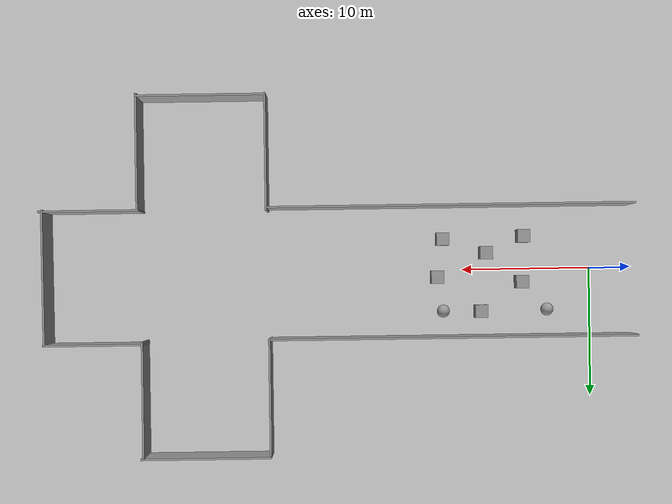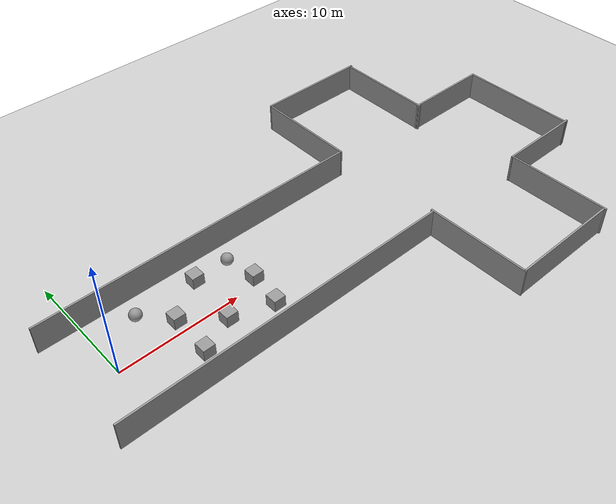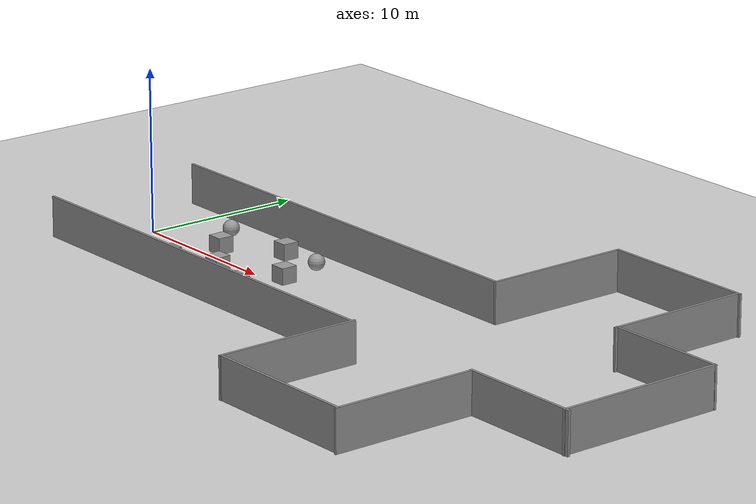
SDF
<sdf version="1.7">
 <world name="default">
  <light name="sun" type="directional">
   <pose>0 0 10 0 -0 0</pose>
   <diffuse>0.8 0.8 0.8 1</diffuse>
   <specular>0.2 0.2 0.2 1</specular>
   <attenuation>
    <range>1000</range>
    <constant>0.9</constant>
    <linear>0.01</linear>
    <quadratic>0.001</quadratic>
   </attenuation>
   <direction>-0.5 0.1 -0.9</direction>
   <spot><inner_angle>0</inner_angle><outer_angle>0</outer_angle><falloff>0</falloff></spot>
  </light>
  <model name="ground_plane">
   <static>1</static>
   <link name="link">
    <collision name="collision">
     <geometry><plane><normal>0 0 1</normal><size>100 100</size></plane></geometry>
     <surface><friction><ode><mu>100</mu><mu2>50</mu2></ode></friction></surface>
    </collision>
    <visual name="visual">
     <cast_shadows>0</cast_shadows>
     <geometry><plane><normal>0 0 1</normal><size>100 100</size></plane></geometry>
     <material>
      <script><uri>file://media/materials/scripts/gazebo.material</uri><name>Gazebo/Grey</name></script>
     </material>
    </visual>
   </link>
  </model>
  <gravity>0 0 -9.8</gravity>
  <magnetic_field>6e-06 2.3e-05 -4.2e-05</magnetic_field>
  <atmosphere type="adiabatic"/>
  <physics type="ode">
   <max_step_size>0.001</max_step_size>
   <real_time_factor>1</real_time_factor>
   <real_time_update_rate>1000</real_time_update_rate>
  </physics>
  <scene><ambient>0.4 0.4 0.4 1</ambient><background>0.7 0.7 0.7 1</background><shadows>1</shadows></scene>
  <spherical_coordinates>
   <surface_model>EARTH_WGS84</surface_model>
   <latitude_deg>0</latitude_deg>
   <longitude_deg>0</longitude_deg>
   <elevation>0</elevation>
   <heading_deg>0</heading_deg>
  </spherical_coordinates>
  <model name="dynamic_T_letter">
   <link name="Wall_10">
    <pose>10.6566 11.3839 0 0 -0 0</pose>
    <visual name="Wall_10_Visual">
     <pose>0 0 1.25 0 -0 0</pose>
     <geometry><box><size>10 0.15 2.5</size></box></geometry>
     <material>
      <script><uri>file://media/materials/scripts/gazebo.material</uri><name>Gazebo/Grey</name></script>
      <ambient>1 1 1 1</ambient>
      <shader type="pixel"/>
     </material>
     <meta><layer>0</layer></meta>
    </visual>
    <collision name="Wall_10_Collision">
     <pose>0 0 1.25 0 -0 0</pose>
     <geometry><box><size>10 0.15 2.5</size></box></geometry>
     <surface>
      <friction>
       <ode><mu>1</mu><mu2>1</mu2><fdir1>0 0 0</fdir1><slip1>0</slip1><slip2>0</slip2></ode>
       <torsional>
        <coefficient>1</coefficient>
        <patch_radius>0</patch_radius>
        <surface_radius>0</surface_radius>
        <use_patch_radius>1</use_patch_radius>
        <ode><slip>0</slip></ode>
       </torsional>
      </friction>
      <bounce><restitution_coefficient>0</restitution_coefficient><threshold>1e+06</threshold></bounce>
      <contact>
       <collide_without_contact>0</collide_without_contact>
       <collide_without_contact_bitmask>1</collide_without_contact_bitmask>
       <collide_bitmask>1</collide_bitmask>
       <ode>
        <soft_cfm>0</soft_cfm>
        <soft_erp>0.2</soft_erp>
        <kp>1e+13</kp>
        <kd>1</kd>
        <max_vel>0.01</max_vel>
        <min_depth>0</min_depth>
       </ode>
       <bullet>
        <split_impulse>1</split_impulse>
        <split_impulse_penetration_threshold>-0.01</split_impulse_penetration_threshold>
        <soft_cfm>0</soft_cfm>
        <soft_erp>0.2</soft_erp>
        <kp>1e+13</kp>
        <kd>1</kd>
       </bullet>
      </contact>
     </surface>
    </collision>
   </link>
   <link name="Wall_10_clone">
    <pose>10.7797 -16.4692 0 0 -0 0</pose>
    <visual name="Wall_10_Visual">
     <pose>0 0 1.25 0 -0 0</pose>
     <geometry><box><size>10 0.15 2.5</size></box></geometry>
     <material>
      <script><uri>file://media/materials/scripts/gazebo.material</uri><name>Gazebo/Grey</name></script>
      <ambient>1 1 1 1</ambient>
      <shader type="pixel"/>
     </material>
     <meta><layer>0</layer></meta>
    </visual>
    <collision name="Wall_10_Collision">
     <pose>0 0 1.25 0 -0 0</pose>
     <geometry><box><size>10 0.15 2.5</size></box></geometry>
     <surface>
      <friction>
       <ode><mu>1</mu><mu2>1</mu2><fdir1>0 0 0</fdir1><slip1>0</slip1><slip2>0</slip2></ode>
       <torsional>
        <coefficient>1</coefficient>
        <patch_radius>0</patch_radius>
        <surface_radius>0</surface_radius>
        <use_patch_radius>1</use_patch_radius>
        <ode><slip>0</slip></ode>
       </torsional>
      </friction>
      <bounce><restitution_coefficient>0</restitution_coefficient><threshold>1e+06</threshold></bounce>
      <contact>
       <collide_without_contact>0</collide_without_contact>
       <collide_without_contact_bitmask>1</collide_without_contact_bitmask>
       <collide_bitmask>1</collide_bitmask>
       <ode>
        <soft_cfm>0</soft_cfm>
        <soft_erp>0.2</soft_erp>
        <kp>1e+13</kp>
        <kd>1</kd>
        <max_vel>0.01</max_vel>
        <min_depth>0</min_depth>
       </ode>
       <bullet>
        <split_impulse>1</split_impulse>
        <split_impulse_penetration_threshold>-0.01</split_impulse_penetration_threshold>
        <soft_cfm>0</soft_cfm>
        <soft_erp>0.2</soft_erp>
        <kp>1e+13</kp>
        <kd>1</kd>
       </bullet>
      </contact>
     </surface>
    </collision>
   </link>
   <link name="Wall_11">
    <pose>15.4566 6.8718 0 0 -0 1.5708</pose>
    <inertial>
     <mass>5.7375</mass>
     <inertia><ixx>2.99904</ixx><ixy>0</ixy><ixz>0</ixz><iyy>41.7164</iyy><iyz>0</iyz><izz>38.7389</izz></inertia>
    </inertial>
    <visual name="Wall_11_Visual">
     <pose>0 0 1.25 0 -0 0</pose>
     <geometry><box><size>9 0.15 2.5</size></box></geometry>
     <material>
      <script><uri>file://media/materials/scripts/gazebo.material</uri><name>Gazebo/Grey</name></script>
      <ambient>1 1 1 1</ambient>
      <shader type="pixel"><normal_map>__default__</normal_map></shader>
     </material>
     <meta><layer>0</layer></meta>
    </visual>
    <collision name="Wall_11_Collision">
     <pose>0 0 1.25 0 -0 0</pose>
     <geometry><box><size>9 0.15 2.5</size></box></geometry>
     <surface>
      <friction>
       <ode><mu>1</mu><mu2>1</mu2><fdir1>0 0 0</fdir1><slip1>0</slip1><slip2>0</slip2></ode>
       <torsional>
        <coefficient>1</coefficient>
        <patch_radius>0</patch_radius>
        <surface_radius>0</surface_radius>
        <use_patch_radius>1</use_patch_radius>
        <ode><slip>0</slip></ode>
       </torsional>
      </friction>
      <bounce><restitution_coefficient>0</restitution_coefficient><threshold>1e+06</threshold></bounce>
      <contact>
       <collide_without_contact>0</collide_without_contact>
       <collide_without_contact_bitmask>1</collide_without_contact_bitmask>
       <collide_bitmask>1</collide_bitmask>
       <ode>
        <soft_cfm>0</soft_cfm>
        <soft_erp>0.2</soft_erp>
        <kp>1e+13</kp>
        <kd>1</kd>
        <max_vel>0.01</max_vel>
        <min_depth>0</min_depth>
       </ode>
       <bullet>
        <split_impulse>1</split_impulse>
        <split_impulse_penetration_threshold>-0.01</split_impulse_penetration_threshold>
        <soft_cfm>0</soft_cfm>
        <soft_erp>0.2</soft_erp>
        <kp>1e+13</kp>
        <kd>1</kd>
       </bullet>
      </contact>
     </surface>
    </collision>
   </link>
   <link name="Wall_12">
    <pose>19.1981 2.60037 0 0 -0 0</pose>
    <inertial>
     <inertia><ixx>1.96598</ixx><ixy>0</ixy><ixz>0</ixz><iyy>20.6154</iyy><iyz>0</iyz><izz>18.6635</izz></inertia>
     <mass>3.76114</mass>
    </inertial>
    <visual name="Wall_12_Visual">
     <pose>0 0 1.25 0 -0 0</pose>
     <geometry><box><size>7.71517 0.15 2.5</size></box></geometry>
     <material>
      <script><uri>file://media/materials/scripts/gazebo.material</uri><name>Gazebo/Grey</name></script>
      <ambient>1 1 1 1</ambient>
      <shader type="pixel"><normal_map>__default__</normal_map></shader>
     </material>
     <meta><layer>0</layer></meta>
    </visual>
    <collision name="Wall_12_Collision">
     <pose>0 0 1.25 0 -0 0</pose>
     <geometry><box><size>7.71517 0.15 2.5</size></box></geometry>
     <surface>
      <friction>
       <ode><mu>1</mu><mu2>1</mu2><fdir1>0 0 0</fdir1><slip1>0</slip1><slip2>0</slip2></ode>
       <torsional>
        <coefficient>1</coefficient>
        <patch_radius>0</patch_radius>
        <surface_radius>0</surface_radius>
        <use_patch_radius>1</use_patch_radius>
        <ode><slip>0</slip></ode>
       </torsional>
      </friction>
      <bounce><restitution_coefficient>0</restitution_coefficient><threshold>1e+06</threshold></bounce>
      <contact>
       <collide_without_contact>0</collide_without_contact>
       <collide_without_contact_bitmask>1</collide_without_contact_bitmask>
       <collide_bitmask>1</collide_bitmask>
       <ode>
        <soft_cfm>0</soft_cfm>
        <soft_erp>0.2</soft_erp>
        <kp>1e+13</kp>
        <kd>1</kd>
        <max_vel>0.01</max_vel>
        <min_depth>0</min_depth>
       </ode>
       <bullet>
        <split_impulse>1</split_impulse>
        <split_impulse_penetration_threshold>-0.01</split_impulse_penetration_threshold>
        <soft_cfm>0</soft_cfm>
        <soft_erp>0.2</soft_erp>
        <kp>1e+13</kp>
        <kd>1</kd>
       </bullet>
      </contact>
     </surface>
    </collision>
   </link>
   <link name="Wall_12_clone">
    <pose>22.9872 -2.59875 0 0 0 -1.56478</pose>
    <inertial>
     <inertia><ixx>2.05113</ixx><ixy>0</ixy><ixz>0</ixz><iyy>37.8499</iyy><iyz>0</iyz><izz>35.8135</izz></inertia>
     <mass>3.92404</mass>
    </inertial>
    <visual name="Wall_12_Visual">
     <pose>0 0 1.25 0 -0 0</pose>
     <geometry><box><size>10.4641 0.15 2.5</size></box></geometry>
     <material>
      <script><uri>file://media/materials/scripts/gazebo.material</uri><name>Gazebo/Grey</name></script>
      <ambient>1 1 1 1</ambient>
      <shader type="pixel"><normal_map>__default__</normal_map></shader>
     </material>
     <meta><layer>0</layer></meta>
    </visual>
    <collision name="Wall_12_Collision">
     <pose>0 0 1.25 0 -0 0</pose>
     <geometry><box><size>10.4641 0.15 2.5</size></box></geometry>
     <surface>
      <friction>
       <ode><mu>1</mu><mu2>1</mu2><fdir1>0 0 0</fdir1><slip1>0</slip1><slip2>0</slip2></ode>
       <torsional>
        <coefficient>1</coefficient>
        <patch_radius>0</patch_radius>
        <surface_radius>0</surface_radius>
        <use_patch_radius>1</use_patch_radius>
        <ode><slip>0</slip></ode>
       </torsional>
      </friction>
      <bounce><restitution_coefficient>0</restitution_coefficient><threshold>1e+06</threshold></bounce>
      <contact>
       <collide_without_contact>0</collide_without_contact>
       <collide_without_contact_bitmask>1</collide_without_contact_bitmask>
       <collide_bitmask>1</collide_bitmask>
       <ode>
        <soft_cfm>0</soft_cfm>
        <soft_erp>0.2</soft_erp>
        <kp>1e+13</kp>
        <kd>1</kd>
        <max_vel>0.01</max_vel>
        <min_depth>0</min_depth>
       </ode>
       <bullet>
        <split_impulse>1</split_impulse>
        <split_impulse_penetration_threshold>-0.01</split_impulse_penetration_threshold>
        <soft_cfm>0</soft_cfm>
        <soft_erp>0.2</soft_erp>
        <kp>1e+13</kp>
        <kd>1</kd>
       </bullet>
      </contact>
     </surface>
    </collision>
   </link>
   <link name="Wall_12_clone_0">
    <pose>19.4607 -7.69714 0 0 -0 0</pose>
    <inertial>
     <inertia><ixx>1.96598</ixx><ixy>0</ixy><ixz>0</ixz><iyy>20.6154</iyy><iyz>0</iyz><izz>18.6635</izz></inertia>
     <mass>3.76114</mass>
    </inertial>
    <visual name="Wall_12_Visual">
     <pose>0 0 1.25 0 -0 0</pose>
     <geometry><box><size>7.71517 0.15 2.5</size></box></geometry>
     <material>
      <script><uri>file://media/materials/scripts/gazebo.material</uri><name>Gazebo/Grey</name></script>
      <ambient>1 1 1 1</ambient>
      <shader type="pixel"><normal_map>__default__</normal_map></shader>
     </material>
     <meta><layer>0</layer></meta>
    </visual>
    <collision name="Wall_12_Collision">
     <pose>0 0 1.25 0 -0 0</pose>
     <geometry><box><size>7.71517 0.15 2.5</size></box></geometry>
     <surface>
      <friction>
       <ode><mu>1</mu><mu2>1</mu2><fdir1>0 0 0</fdir1><slip1>0</slip1><slip2>0</slip2></ode>
       <torsional>
        <coefficient>1</coefficient>
        <patch_radius>0</patch_radius>
        <surface_radius>0</surface_radius>
        <use_patch_radius>1</use_patch_radius>
        <ode><slip>0</slip></ode>
       </torsional>
      </friction>
      <bounce><restitution_coefficient>0</restitution_coefficient><threshold>1e+06</threshold></bounce>
      <contact>
       <collide_without_contact>0</collide_without_contact>
       <collide_without_contact_bitmask>1</collide_without_contact_bitmask>
       <collide_bitmask>1</collide_bitmask>
       <ode>
        <soft_cfm>0</soft_cfm>
        <soft_erp>0.2</soft_erp>
        <kp>1e+13</kp>
        <kd>1</kd>
        <max_vel>0.01</max_vel>
        <min_depth>0</min_depth>
       </ode>
       <bullet>
        <split_impulse>1</split_impulse>
        <split_impulse_penetration_threshold>-0.01</split_impulse_penetration_threshold>
        <soft_cfm>0</soft_cfm>
        <soft_erp>0.2</soft_erp>
        <kp>1e+13</kp>
        <kd>1</kd>
       </bullet>
      </contact>
     </surface>
    </collision>
   </link>
   <link name="Wall_8">
    <pose>-8.44337 2.36837 0 0 -0 0</pose>
    <inertial>
     <mass>11.6531</mass>
     <inertia><ixx>6.09119</ixx><ixy>0</ixy><ixz>0</ixz><iyy>781.063</iyy><iyz>0</iyz><izz>775.015</izz></inertia>
    </inertial>
    <visual name="Wall_8_Visual">
     <pose>0 0 1.25 0 -0 0</pose>
     <geometry><box><size>28.25 0.15 2.5</size></box></geometry>
     <material>
      <script><uri>file://media/materials/scripts/gazebo.material</uri><name>Gazebo/Grey</name></script>
      <ambient>1 1 1 1</ambient>
      <shader type="pixel"><normal_map>__default__</normal_map></shader>
     </material>
     <meta><layer>0</layer></meta>
    </visual>
    <collision name="Wall_8_Collision">
     <pose>0 0 1.25 0 -0 0</pose>
     <geometry><box><size>28.25 0.15 2.5</size></box></geometry>
     <surface>
      <friction>
       <ode><mu>1</mu><mu2>1</mu2><fdir1>0 0 0</fdir1><slip1>0</slip1><slip2>0</slip2></ode>
       <torsional>
        <coefficient>1</coefficient>
        <patch_radius>0</patch_radius>
        <surface_radius>0</surface_radius>
        <use_patch_radius>1</use_patch_radius>
        <ode><slip>0</slip></ode>
       </torsional>
      </friction>
      <bounce><restitution_coefficient>0</restitution_coefficient><threshold>1e+06</threshold></bounce>
      <contact>
       <collide_without_contact>0</collide_without_contact>
       <collide_without_contact_bitmask>1</collide_without_contact_bitmask>
       <collide_bitmask>1</collide_bitmask>
       <ode>
        <soft_cfm>0</soft_cfm>
        <soft_erp>0.2</soft_erp>
        <kp>1e+13</kp>
        <kd>1</kd>
        <max_vel>0.01</max_vel>
        <min_depth>0</min_depth>
       </ode>
       <bullet>
        <split_impulse>1</split_impulse>
        <split_impulse_penetration_threshold>-0.01</split_impulse_penetration_threshold>
        <soft_cfm>0</soft_cfm>
        <soft_erp>0.2</soft_erp>
        <kp>1e+13</kp>
        <kd>1</kd>
       </bullet>
      </contact>
     </surface>
    </collision>
   </link>
   <link name="Wall_8_clone">
    <pose>-8.32696 -7.80771 0 0 -0 0</pose>
    <inertial>
     <mass>11.6531</mass>
     <inertia><ixx>6.09119</ixx><ixy>0</ixy><ixz>0</ixz><iyy>781.063</iyy><iyz>0</iyz><izz>775.015</izz></inertia>
    </inertial>
    <visual name="Wall_8_Visual">
     <pose>0 0 1.25 0 -0 0</pose>
     <geometry><box><size>28.25 0.15 2.5</size></box></geometry>
     <material>
      <script><uri>file://media/materials/scripts/gazebo.material</uri><name>Gazebo/Grey</name></script>
      <ambient>1 1 1 1</ambient>
      <shader type="pixel"><normal_map>__default__</normal_map></shader>
     </material>
     <meta><layer>0</layer></meta>
    </visual>
    <collision name="Wall_8_Collision">
     <pose>0 0 1.25 0 -0 0</pose>
     <geometry><box><size>28.25 0.15 2.5</size></box></geometry>
     <surface>
      <friction>
       <ode><mu>1</mu><mu2>1</mu2><fdir1>0 0 0</fdir1><slip1>0</slip1><slip2>0</slip2></ode>
       <torsional>
        <coefficient>1</coefficient>
        <patch_radius>0</patch_radius>
        <surface_radius>0</surface_radius>
        <use_patch_radius>1</use_patch_radius>
        <ode><slip>0</slip></ode>
       </torsional>
      </friction>
      <bounce><restitution_coefficient>0</restitution_coefficient><threshold>1e+06</threshold></bounce>
      <contact>
       <collide_without_contact>0</collide_without_contact>
       <collide_without_contact_bitmask>1</collide_without_contact_bitmask>
       <collide_bitmask>1</collide_bitmask>
       <ode>
        <soft_cfm>0</soft_cfm>
        <soft_erp>0.2</soft_erp>
        <kp>1e+13</kp>
        <kd>1</kd>
        <max_vel>0.01</max_vel>
        <min_depth>0</min_depth>
       </ode>
       <bullet>
        <split_impulse>1</split_impulse>
        <split_impulse_penetration_threshold>-0.01</split_impulse_penetration_threshold>
        <soft_cfm>0</soft_cfm>
        <soft_erp>0.2</soft_erp>
        <kp>1e+13</kp>
        <kd>1</kd>
       </bullet>
      </contact>
     </surface>
    </collision>
   </link>
   <link name="Wall_9">
    <pose>5.71087 6.78603 0 0 0 -1.5708</pose>
    <inertial>
     <mass>5.4</mass>
     <inertia><ixx>2.82262</ixx><ixy>0</ixy><ixz>0</ixz><iyy>39.2625</iyy><iyz>0</iyz><izz>36.4601</izz></inertia>
    </inertial>
    <visual name="Wall_9_Visual">
     <pose>0 0 1.25 0 -0 0</pose>
     <geometry><box><size>9 0.15 2.5</size></box></geometry>
     <material>
      <script><uri>file://media/materials/scripts/gazebo.material</uri><name>Gazebo/Grey</name></script>
      <ambient>1 1 1 1</ambient>
      <shader type="pixel"><normal_map>__default__</normal_map></shader>
     </material>
     <meta><layer>0</layer></meta>
    </visual>
    <collision name="Wall_9_Collision">
     <pose>0 0 1.25 0 -0 0</pose>
     <geometry><box><size>9 0.15 2.5</size></box></geometry>
     <surface>
      <friction>
       <ode><mu>1</mu><mu2>1</mu2><fdir1>0 0 0</fdir1><slip1>0</slip1><slip2>0</slip2></ode>
       <torsional>
        <coefficient>1</coefficient>
        <patch_radius>0</patch_radius>
        <surface_radius>0</surface_radius>
        <use_patch_radius>1</use_patch_radius>
        <ode><slip>0</slip></ode>
       </torsional>
      </friction>
      <bounce><restitution_coefficient>0</restitution_coefficient><threshold>1e+06</threshold></bounce>
      <contact>
       <collide_without_contact>0</collide_without_contact>
       <collide_without_contact_bitmask>1</collide_without_contact_bitmask>
       <collide_bitmask>1</collide_bitmask>
       <ode>
        <soft_cfm>0</soft_cfm>
        <soft_erp>0.2</soft_erp>
        <kp>1e+13</kp>
        <kd>1</kd>
        <max_vel>0.01</max_vel>
        <min_depth>0</min_depth>
       </ode>
       <bullet>
        <split_impulse>1</split_impulse>
        <split_impulse_penetration_threshold>-0.01</split_impulse_penetration_threshold>
        <soft_cfm>0</soft_cfm>
        <soft_erp>0.2</soft_erp>
        <kp>1e+13</kp>
        <kd>1</kd>
       </bullet>
      </contact>
     </surface>
    </collision>
   </link>
   <link name="Wall_9_clone">
    <pose>5.84038 -12.0761 0 0 0 -1.5708</pose>
    <inertial>
     <mass>5.4</mass>
     <inertia><ixx>2.82262</ixx><ixy>0</ixy><ixz>0</ixz><iyy>39.2625</iyy><iyz>0</iyz><izz>36.4601</izz></inertia>
    </inertial>
    <visual name="Wall_9_Visual">
     <pose>0 0 1.25 0 -0 0</pose>
     <geometry><box><size>9 0.15 2.5</size></box></geometry>
     <material>
      <script><uri>file://media/materials/scripts/gazebo.material</uri><name>Gazebo/Grey</name></script>
      <ambient>1 1 1 1</ambient>
      <shader type="pixel"><normal_map>__default__</normal_map></shader>
     </material>
     <meta><layer>0</layer></meta>
    </visual>
    <collision name="Wall_9_Collision">
     <pose>0 0 1.25 0 -0 0</pose>
     <geometry><box><size>9 0.15 2.5</size></box></geometry>
     <surface>
      <friction>
       <ode><mu>1</mu><mu2>1</mu2><fdir1>0 0 0</fdir1><slip1>0</slip1><slip2>0</slip2></ode>
       <torsional>
        <coefficient>1</coefficient>
        <patch_radius>0</patch_radius>
        <surface_radius>0</surface_radius>
        <use_patch_radius>1</use_patch_radius>
        <ode><slip>0</slip></ode>
       </torsional>
      </friction>
      <bounce><restitution_coefficient>0</restitution_coefficient><threshold>1e+06</threshold></bounce>
      <contact>
       <collide_without_contact>0</collide_without_contact>
       <collide_without_contact_bitmask>1</collide_without_contact_bitmask>
       <collide_bitmask>1</collide_bitmask>
       <ode>
        <soft_cfm>0</soft_cfm>
        <soft_erp>0.2</soft_erp>
        <kp>1e+13</kp>
        <kd>1</kd>
        <max_vel>0.01</max_vel>
        <min_depth>0</min_depth>
       </ode>
       <bullet>
        <split_impulse>1</split_impulse>
        <split_impulse_penetration_threshold>-0.01</split_impulse_penetration_threshold>
        <soft_cfm>0</soft_cfm>
        <soft_erp>0.2</soft_erp>
        <kp>1e+13</kp>
        <kd>1</kd>
       </bullet>
      </contact>
     </surface>
    </collision>
   </link>
   <link name="Wall_9_clone_0">
    <pose>15.7197 -12.1664 0 0 0 -1.5708</pose>
    <inertial>
     <mass>5.4</mass>
     <inertia><ixx>2.82262</ixx><ixy>0</ixy><ixz>0</ixz><iyy>39.2625</iyy><iyz>0</iyz><izz>36.4601</izz></inertia>
    </inertial>
    <visual name="Wall_9_Visual">
     <pose>0 0 1.25 0 -0 0</pose>
     <geometry><box><size>9 0.15 2.5</size></box></geometry>
     <material>
      <script><uri>file://media/materials/scripts/gazebo.material</uri><name>Gazebo/Grey</name></script>
      <ambient>1 1 1 1</ambient>
      <shader type="pixel"><normal_map>__default__</normal_map></shader>
     </material>
     <meta><layer>0</layer></meta>
    </visual>
    <collision name="Wall_9_Collision">
     <pose>0 0 1.25 0 -0 0</pose>
     <geometry><box><size>9 0.15 2.5</size></box></geometry>
     <surface>
      <friction>
       <ode><mu>1</mu><mu2>1</mu2><fdir1>0 0 0</fdir1><slip1>0</slip1><slip2>0</slip2></ode>
       <torsional>
        <coefficient>1</coefficient>
        <patch_radius>0</patch_radius>
        <surface_radius>0</surface_radius>
        <use_patch_radius>1</use_patch_radius>
        <ode><slip>0</slip></ode>
       </torsional>
      </friction>
      <bounce><restitution_coefficient>0</restitution_coefficient><threshold>1e+06</threshold></bounce>
      <contact>
       <collide_without_contact>0</collide_without_contact>
       <collide_without_contact_bitmask>1</collide_without_contact_bitmask>
       <collide_bitmask>1</collide_bitmask>
       <ode>
        <soft_cfm>0</soft_cfm>
        <soft_erp>0.2</soft_erp>
        <kp>1e+13</kp>
        <kd>1</kd>
        <max_vel>0.01</max_vel>
        <min_depth>0</min_depth>
       </ode>
       <bullet>
        <split_impulse>1</split_impulse>
        <split_impulse_penetration_threshold>-0.01</split_impulse_penetration_threshold>
        <soft_cfm>0</soft_cfm>
        <soft_erp>0.2</soft_erp>
        <kp>1e+13</kp>
        <kd>1</kd>
       </bullet>
      </contact>
     </surface>
    </collision>
   </link>
   <static>1</static>
   <pose>19.4412 2.8194 0 0 -0 0</pose>
  </model>
  <model name="unit_box">
   <pose>5.40967 1.00086 0.5 0 -0 0</pose>
   <link name="link">
    <inertial>
     <mass>1</mass>
     <inertia>
      <ixx>0.166667</ixx>
      <ixy>0</ixy>
      <ixz>0</ixz>
      <iyy>0.166667</iyy>
      <iyz>0</iyz>
      <izz>0.166667</izz>
     </inertia>
    </inertial>
    <collision name="collision"><geometry><box><size>1 1 1</size></box></geometry></collision>
    <visual name="visual">
     <geometry><box><size>1 1 1</size></box></geometry>
     <material>
      <script><name>Gazebo/Grey</name><uri>file://media/materials/scripts/gazebo.material</uri></script>
     </material>
    </visual>
   </link>
  </model>
  <model name="unit_box_0">
   <pose>8.21911 -1.30486 0.499995 0 -1e-05 0</pose>
   <link name="link">
    <inertial>
     <mass>1</mass>
     <inertia>
      <ixx>0.166667</ixx>
      <ixy>0</ixy>
      <ixz>0</ixz>
      <iyy>0.166667</iyy>
      <iyz>0</iyz>
      <izz>0.166667</izz>
     </inertia>
    </inertial>
    <collision name="collision"><geometry><box><size>1 1 1</size></box></geometry></collision>
    <visual name="visual">
     <geometry><box><size>1 1 1</size></box></geometry>
     <material>
      <script><name>Gazebo/Grey</name><uri>file://media/materials/scripts/gazebo.material</uri></script>
     </material>
    </visual>
   </link>
  </model>
  <model name="unit_box_1">
   <pose>8.6394 3.2659 0.499995 0 1e-05 0</pose>
   <link name="link">
    <inertial>
     <mass>1</mass>
     <inertia>
      <ixx>0.166667</ixx>
      <ixy>0</ixy>
      <ixz>0</ixz>
      <iyy>0.166667</iyy>
      <iyz>0</iyz>
      <izz>0.166667</izz>
     </inertia>
    </inertial>
    <collision name="collision"><geometry><box><size>1 1 1</size></box></geometry></collision>
    <visual name="visual">
     <geometry><box><size>1 1 1</size></box></geometry>
     <material>
      <script><name>Gazebo/Grey</name><uri>file://media/materials/scripts/gazebo.material</uri></script>
     </material>
    </visual>
   </link>
  </model>
  <model name="unit_box_2">
   <pose>5.274 -2.58909 0.499995 -1e-05 0 0</pose>
   <link name="link">
    <inertial>
     <mass>1</mass>
     <inertia>
      <ixx>0.166667</ixx>
      <ixy>0</ixy>
      <ixz>0</ixz>
      <iyy>0.166667</iyy>
      <iyz>0</iyz>
      <izz>0.166667</izz>
     </inertia>
    </inertial>
    <collision name="collision"><geometry><box><size>1 1 1</size></box></geometry></collision>
    <visual name="visual">
     <geometry><box><size>1 1 1</size></box></geometry>
     <material>
      <script><name>Gazebo/Grey</name><uri>file://media/materials/scripts/gazebo.material</uri></script>
     </material>
    </visual>
   </link>
  </model>
  <model name="unit_sphere">
   <pose>3.44827 3.17721 0.5 0 -0 0</pose>
   <link name="link">
    <inertial>
     <mass>1</mass>
     <inertia><ixx>0.1</ixx><ixy>0</ixy><ixz>0</ixz><iyy>0.1</iyy><iyz>0</iyz><izz>0.1</izz></inertia>
    </inertial>
    <collision name="collision"><geometry><sphere><radius>0.5</radius></sphere></geometry></collision>
    <visual name="visual">
     <geometry><sphere><radius>0.5</radius></sphere></geometry>
     <material>
      <script><name>Gazebo/Grey</name><uri>file://media/materials/scripts/gazebo.material</uri></script>
     </material>
    </visual>
   </link>
  </model>
  <model name="unit_box_3">
   <pose>12.0428 0.552025 0.499995 -1e-05 0 0</pose>
   <link name="link">
    <inertial>
     <mass>1</mass>
     <inertia>
      <ixx>0.166667</ixx>
      <ixy>0</ixy>
      <ixz>0</ixz>
      <iyy>0.166667</iyy>
      <iyz>0</iyz>
      <izz>0.166667</izz>
     </inertia>
    </inertial>
    <collision name="collision"><geometry><box><size>1 1 1</size></box></geometry></collision>
    <visual name="visual">
     <geometry><box><size>1 1 1</size></box></geometry>
     <material>
      <script><name>Gazebo/Grey</name><uri>file://media/materials/scripts/gazebo.material</uri></script>
     </material>
    </visual>
   </link>
  </model>
  <model name="unit_box_4">
   <pose>11.6071 -2.42331 0.499995 0 -1e-05 0</pose>
   <link name="link">
    <inertial>
     <mass>1</mass>
     <inertia>
      <ixx>0.166667</ixx>
      <ixy>0</ixy>
      <ixz>0</ixz>
      <iyy>0.166667</iyy>
      <iyz>0</iyz>
      <izz>0.166667</izz>
     </inertia>
    </inertial>
    <collision name="collision"><geometry><box><size>1 1 1</size></box></geometry></collision>
    <visual name="visual">
     <geometry><box><size>1 1 1</size></box></geometry>
     <material>
      <script><name>Gazebo/Grey</name><uri>file://media/materials/scripts/gazebo.material</uri></script>
     </material>
    </visual>
   </link>
  </model>
  <model name="unit_sphere_0">
   <pose>11.5806 3.23046 0.5 0 -0 0</pose>
   <link name="link">
    <inertial>
     <mass>1</mass>
     <inertia><ixx>0.1</ixx><ixy>0</ixy><ixz>0</ixz><iyy>0.1</iyy><iyz>0</iyz><izz>0.1</izz></inertia>
    </inertial>
    <collision name="collision"><geometry><sphere><radius>0.5</radius></sphere></geometry></collision>
    <visual name="visual">
     <geometry><sphere><radius>0.5</radius></sphere></geometry>
     <material>
      <script><name>Gazebo/Grey</name><uri>file://media/materials/scripts/gazebo.material</uri></script>
     </material>
    </visual>
   </link>
  </model>
 </world>
</sdf>
